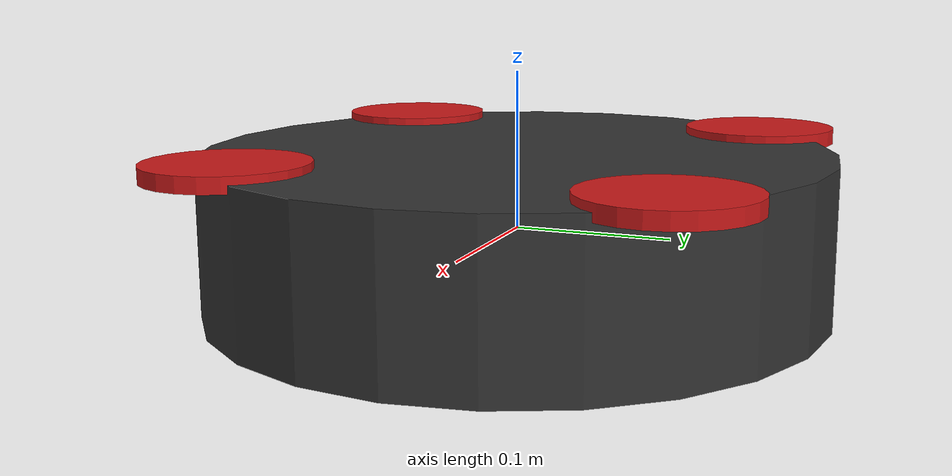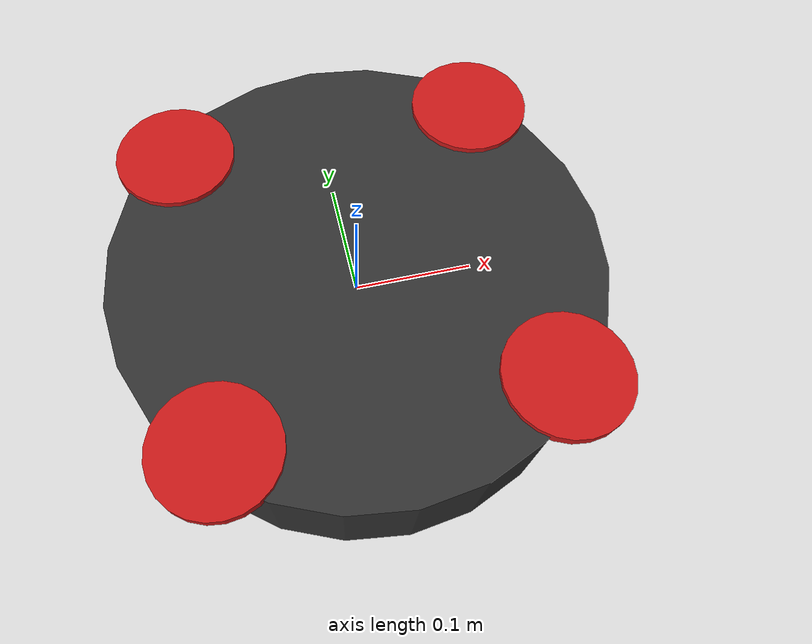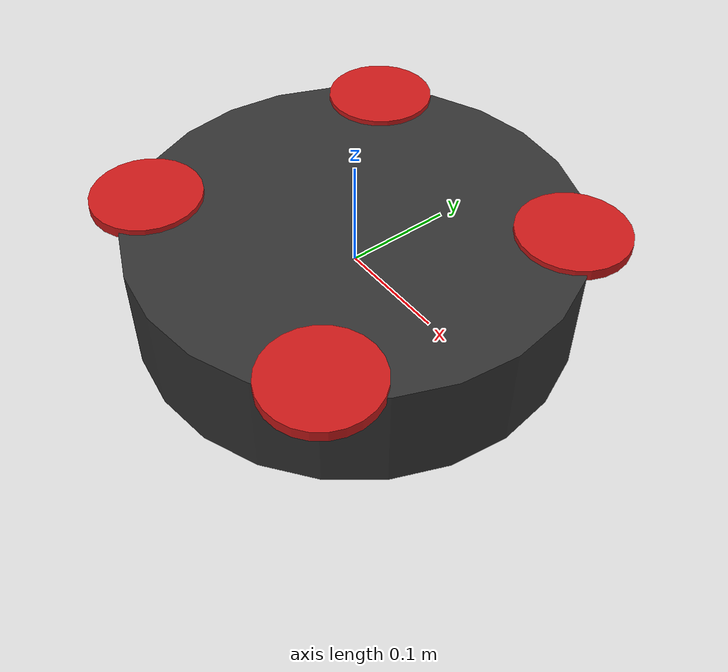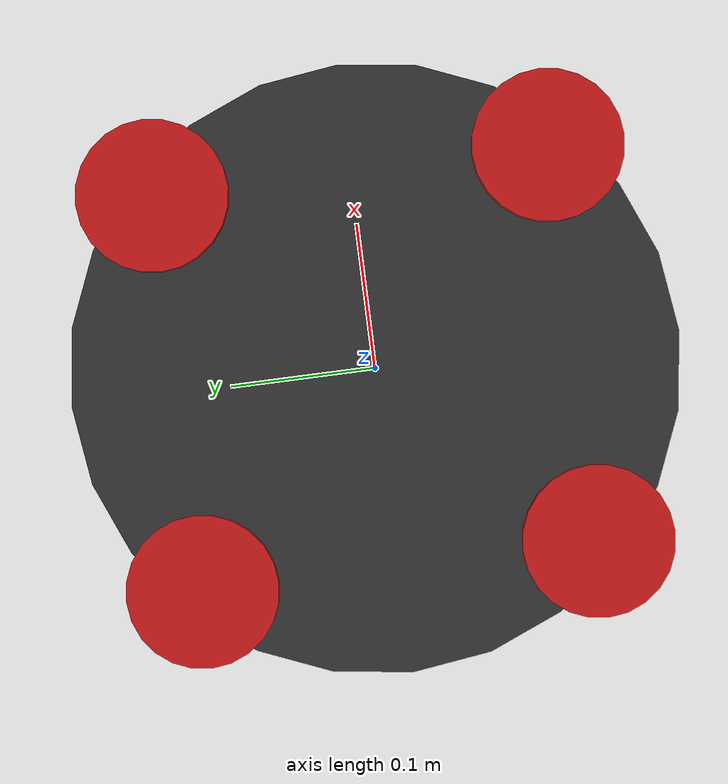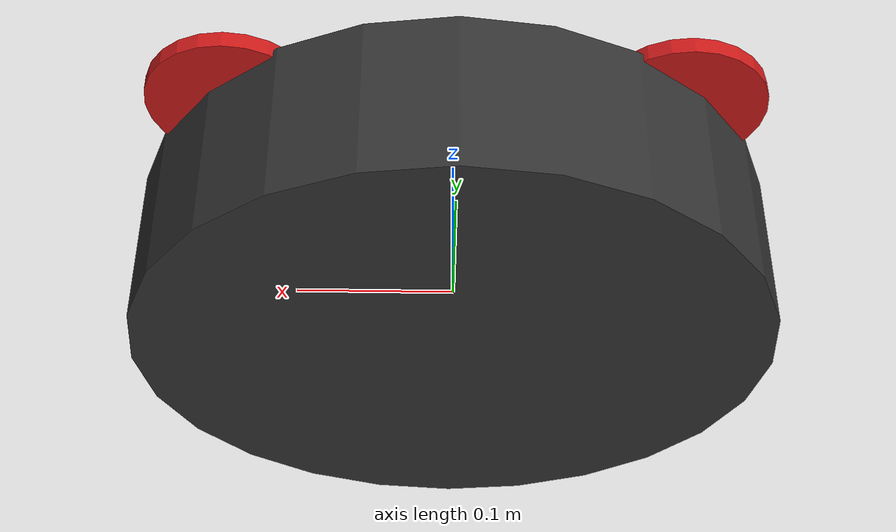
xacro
<?xml version="1.0"?>
<robot name="sar_drone" xmlns:xacro="http://www.ros.org/wiki/xacro">

  <!-- ================= BASE ================= -->
  <link name="base_link">
    <inertial>
      <mass value="1.5"/>
      <inertia ixx="0.029125" ixy="0" ixz="0" iyy="0.029125" iyz="0" izz="0.055225"/>
    </inertial>
    <visual>
      <geometry>
        <cylinder radius="0.2" length="0.1"/>
      </geometry>
      <material name="drone_body">
        <color rgba="0.2 0.2 0.2 1.0"/>
      </material>
    </visual>
    <collision>
      <geometry>
        <cylinder radius="0.2" length="0.1"/>
      </geometry>
    </collision>
  </link>

  <!-- ================= ROTORS ================= -->
  <!-- Front Right Motor (Motor 0) -->
  <link name="rotor_0">
    <inertial>
      <mass value="0.01"/>
      <inertia ixx="0.0001" ixy="0" ixz="0" iyy="0.0001" iyz="0" izz="0.0001"/>
    </inertial>
    <visual>
      <geometry>
        <cylinder radius="0.05" length="0.01"/>
      </geometry>
      <material name="rotor">
        <color rgba="0.8 0.1 0.1 1.0"/>
      </material>
    </visual>
  </link>
  <joint name="rotor_0_joint" type="continuous">
    <parent link="base_link"/>
    <child link="rotor_0"/>
    <origin xyz="0.13 0.13 0.05" rpy="0 0 0"/>
    <axis xyz="0 0 1"/>
  </joint>

  <!-- Front Left Motor (Motor 1) -->
  <link name="rotor_1">
    <inertial>
      <mass value="0.01"/>
      <inertia ixx="0.0001" ixy="0" ixz="0" iyy="0.0001" iyz="0" izz="0.0001"/>
    </inertial>
    <visual>
      <geometry>
        <cylinder radius="0.05" length="0.01"/>
      </geometry>
      <material name="rotor">
        <color rgba="0.8 0.1 0.1 1.0"/>
      </material>
    </visual>
  </link>
  <joint name="rotor_1_joint" type="continuous">
    <parent link="base_link"/>
    <child link="rotor_1"/>
    <origin xyz="-0.13 0.13 0.05" rpy="0 0 0"/>
    <axis xyz="0 0 1"/>
  </joint>

  <!-- Rear Left Motor (Motor 2) -->
  <link name="rotor_2">
    <inertial>
      <mass value="0.01"/>
      <inertia ixx="0.0001" ixy="0" ixz="0" iyy="0.0001" iyz="0" izz="0.0001"/>
    </inertial>
    <visual>
      <geometry>
        <cylinder radius="0.05" length="0.01"/>
      </geometry>
      <material name="rotor">
        <color rgba="0.8 0.1 0.1 1.0"/>
      </material>
    </visual>
  </link>
  <joint name="rotor_2_joint" type="continuous">
    <parent link="base_link"/>
    <child link="rotor_2"/>
    <origin xyz="-0.13 -0.13 0.05" rpy="0 0 0"/>
    <axis xyz="0 0 1"/>
  </joint>

  <!-- Rear Right Motor (Motor 3) -->
  <link name="rotor_3">
    <inertial>
      <mass value="0.01"/>
      <inertia ixx="0.0001" ixy="0" ixz="0" iyy="0.0001" iyz="0" izz="0.0001"/>
    </inertial>
    <visual>
      <geometry>
        <cylinder radius="0.05" length="0.01"/>
      </geometry>
      <material name="rotor">
        <color rgba="0.8 0.1 0.1 1.0"/>
      </material>
    </visual>
  </link>
  <joint name="rotor_3_joint" type="continuous">
    <parent link="base_link"/>
    <child link="rotor_3"/>
    <origin xyz="0.13 -0.13 0.05" rpy="0 0 0"/>
    <axis xyz="0 0 1"/>
  </joint>

  <!-- ================= LIDAR ================= -->
  <link name="lidar_link"/>
  <joint name="lidar_joint" type="fixed">
    <parent link="base_link"/>
    <child link="lidar_link"/>
    <origin xyz="0 0 0.1" rpy="0 0 0"/>
  </joint>

  <!-- ================= CAMERA ================= -->
  <link name="camera_link"/>
  <joint name="camera_joint" type="fixed">
    <parent link="base_link"/>
    <child link="camera_link"/>
    <origin xyz="0.2 0 0" rpy="0 0 0"/>
  </joint>

  <!-- ================= IMU ================= -->
  <link name="imu_link"/>
  <joint name="imu_joint" type="fixed">
    <parent link="base_link"/>
    <child link="imu_link"/>
    <origin xyz="0 0 0" rpy="0 0 0"/>
  </joint>

  <!-- ================= GZ-SIM SENSORS ================= -->

  <!-- LiDAR -->
  <gazebo reference="lidar_link">
    <sensor name="rplidar" type="gpu_lidar">
      <frame>lidar_link</frame>
      <topic>/scan</topic>
      <update_rate>10</update_rate>
      <ray>
        <scan>
          <horizontal>
            <samples>360</samples>
            <min_angle>-3.14159</min_angle>
            <max_angle>3.14159</max_angle>
          </horizontal>
        </scan>
        <range>
          <min>0.1</min>
          <max>12.0</max>
        </range>
      </ray>
    </sensor>
  </gazebo>

  <!-- RGB-D Camera -->
  <gazebo reference="camera_link">
    <sensor name="rgbd" type="rgbd_camera">
      <frame>camera_link</frame>
      <topic>/camera</topic>
      <update_rate>30</update_rate>
      <camera>
        <horizontal_fov>1.047</horizontal_fov>
        <image>
          <width>640</width>
          <height>480</height>
          <format>R8G8B8</format>
        </image>
        <rgbd_camera>
          <clip>
            <near>0.1</near>
            <far>10.0</far>
          </clip>
        </rgbd_camera>
      </camera>
    </sensor>
  </gazebo>

  <!-- IMU -->
  <gazebo reference="imu_link">
    <sensor name="imu" type="imu">
      <frame>imu_link</frame>
      <topic>/imu/data</topic>
      <update_rate>100</update_rate>
      <imu>
        <angular_velocity>
          <x>
            <noise type="gaussian">
              <mean>0.0</mean>
              <stddev>0.0002</stddev>
              <bias_mean>0.0</bias_mean>
              <bias_stddev>0.0001</bias_stddev>
            </noise>
          </x>
          <y>
            <noise type="gaussian">
              <mean>0.0</mean>
              <stddev>0.0002</stddev>
              <bias_mean>0.0</bias_mean>
              <bias_stddev>0.0001</bias_stddev>
            </noise>
          </y>
          <z>
            <noise type="gaussian">
              <mean>0.0</mean>
              <stddev>0.0002</stddev>
              <bias_mean>0.0</bias_mean>
              <bias_stddev>0.0001</bias_stddev>
            </noise>
          </z>
        </angular_velocity>
        <linear_acceleration>
          <x>
            <noise type="gaussian">
              <mean>0.0</mean>
              <stddev>0.017</stddev>
              <bias_mean>0.0</bias_mean>
              <bias_stddev>0.008</bias_stddev>
            </noise>
          </x>
          <y>
            <noise type="gaussian">
              <mean>0.0</mean>
              <stddev>0.017</stddev>
              <bias_mean>0.0</bias_mean>
              <bias_stddev>0.008</bias_stddev>
            </noise>
          </y>
          <z>
            <noise type="gaussian">
              <mean>0.0</mean>
              <stddev>0.017</stddev>
              <bias_mean>0.0</bias_mean>
              <bias_stddev>0.008</bias_stddev>
            </noise>
          </z>
        </linear_acceleration>
      </imu>
    </sensor>
  </gazebo>

  <!-- ================= MULTICOPTER FLIGHT CONTROLLER ================= -->
  <gazebo>
    <!-- Motor 0: Front Right (CCW) -->
    <plugin filename="gz-sim-multicopter-motor-model-system"
            name="gz::sim::systems::MulticopterMotorModel">
      <jointName>rotor_0_joint</jointName>
      <linkName>rotor_0</linkName>
      <turningDirection>ccw</turningDirection>
      <timeConstantUp>0.0125</timeConstantUp>
      <timeConstantDown>0.025</timeConstantDown>
      <maxRotVelocity>1100</maxRotVelocity>
      <motorConstant>8.54858e-06</motorConstant>
      <momentConstant>0.06</momentConstant>
      <commandSubTopic>/gazebo/command/motor_speed</commandSubTopic>
      <motorNumber>0</motorNumber>
      <rotorDragCoefficient>0.000806428</rotorDragCoefficient>
      <rollingMomentCoefficient>1e-06</rollingMomentCoefficient>
      <rotorVelocitySlowdownSim>10</rotorVelocitySlowdownSim>
    </plugin>

    <!-- Motor 1: Front Left (CW) -->
    <plugin filename="gz-sim-multicopter-motor-model-system"
            name="gz::sim::systems::MulticopterMotorModel">
      <jointName>rotor_1_joint</jointName>
      <linkName>rotor_1</linkName>
      <turningDirection>cw</turningDirection>
      <timeConstantUp>0.0125</timeConstantUp>
      <timeConstantDown>0.025</timeConstantDown>
      <maxRotVelocity>1100</maxRotVelocity>
      <motorConstant>8.54858e-06</motorConstant>
      <momentConstant>0.06</momentConstant>
      <commandSubTopic>/gazebo/command/motor_speed</commandSubTopic>
      <motorNumber>1</motorNumber>
      <rotorDragCoefficient>0.000806428</rotorDragCoefficient>
      <rollingMomentCoefficient>1e-06</rollingMomentCoefficient>
      <rotorVelocitySlowdownSim>10</rotorVelocitySlowdownSim>
    </plugin>

    <!-- Motor 2: Rear Left (CCW) -->
    <plugin filename="gz-sim-multicopter-motor-model-system"
            name="gz::sim::systems::MulticopterMotorModel">
      <jointName>rotor_2_joint</jointName>
      <linkName>rotor_2</linkName>
      <turningDirection>ccw</turningDirection>
      <timeConstantUp>0.0125</timeConstantUp>
      <timeConstantDown>0.025</timeConstantDown>
      <maxRotVelocity>1100</maxRotVelocity>
      <motorConstant>8.54858e-06</motorConstant>
      <momentConstant>0.06</momentConstant>
      <commandSubTopic>/gazebo/command/motor_speed</commandSubTopic>
      <motorNumber>2</motorNumber>
      <rotorDragCoefficient>0.000806428</rotorDragCoefficient>
      <rollingMomentCoefficient>1e-06</rollingMomentCoefficient>
      <rotorVelocitySlowdownSim>10</rotorVelocitySlowdownSim>
    </plugin>

    <!-- Motor 3: Rear Right (CW) -->
    <plugin filename="gz-sim-multicopter-motor-model-system"
            name="gz::sim::systems::MulticopterMotorModel">
      <jointName>rotor_3_joint</jointName>
      <linkName>rotor_3</linkName>
      <turningDirection>cw</turningDirection>
      <timeConstantUp>0.0125</timeConstantUp>
      <timeConstantDown>0.025</timeConstantDown>
      <maxRotVelocity>1100</maxRotVelocity>
      <motorConstant>8.54858e-06</motorConstant>
      <momentConstant>0.06</momentConstant>
      <commandSubTopic>/gazebo/command/motor_speed</commandSubTopic>
      <motorNumber>3</motorNumber>
      <rotorDragCoefficient>0.000806428</rotorDragCoefficient>
      <rollingMomentCoefficient>1e-06</rollingMomentCoefficient>
      <rotorVelocitySlowdownSim>10</rotorVelocitySlowdownSim>
    </plugin>

    <!-- Multicopter Velocity Controller -->
    <plugin filename="gz-sim-multicopter-control-system"
            name="gz::sim::systems::MulticopterVelocityControl">

      <robotNamespace>sar_drone</robotNamespace>  ← ADD THIS LINE!

      <commandSubTopic>cmd_vel</commandSubTopic>
      <motorControlPubTopic>/gazebo/command/motor_speed</motorControlPubTopic>
      <enableSubTopic>enable</enableSubTopic>
      <comLinkName>base_link</comLinkName>
      <velocityGain>2.7 2.7 5.0</velocityGain>
      <attitudeGain>4.0 4.0 0.6</attitudeGain>
      <angularRateGain>0.5 0.5 0.3</angularRateGain>
      <maximumLinearAcceleration>2.0 2.0 4.0</maximumLinearAcceleration>
      <maximumAngularVelocity>3.0 3.0 2.0</maximumAngularVelocity>
      <linearVelocityNoiseMean>0 0 0</linearVelocityNoiseMean>
      <linearVelocityNoiseStdDev>0.05 0.05 0.05</linearVelocityNoiseStdDev>
      <angularVelocityNoiseMean>0 0 0</angularVelocityNoiseMean>
      <angularVelocityNoiseStdDev>0.01 0.01 0.01</angularVelocityNoiseStdDev>

      <rotorConfiguration>
        <rotor>
          <jointName>rotor_0_joint</jointName>
          <forceConstant>8.54858e-06</forceConstant>
          <momentConstant>0.06</momentConstant>
          <direction>1</direction>
        </rotor>
        <rotor>
          <jointName>rotor_1_joint</jointName>
          <forceConstant>8.54858e-06</forceConstant>
          <momentConstant>0.06</momentConstant>
          <direction>-1</direction>
        </rotor>
        <rotor>
          <jointName>rotor_2_joint</jointName>
          <forceConstant>8.54858e-06</forceConstant>
          <momentConstant>0.06</momentConstant>
          <direction>1</direction>
        </rotor>
        <rotor>
          <jointName>rotor_3_joint</jointName>
          <forceConstant>8.54858e-06</forceConstant>
          <momentConstant>0.06</momentConstant>
          <direction>-1</direction>
        </rotor>
      </rotorConfiguration>

    </plugin>
  </gazebo>

</robot>
